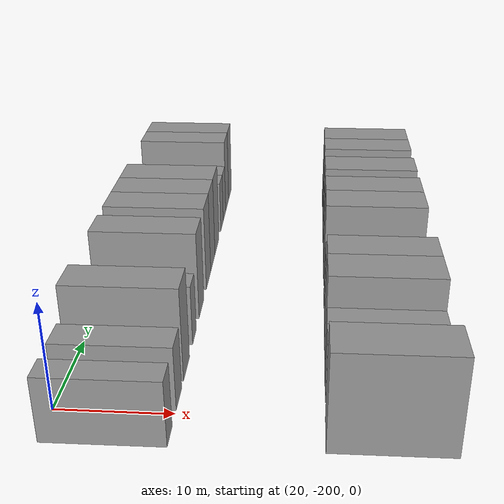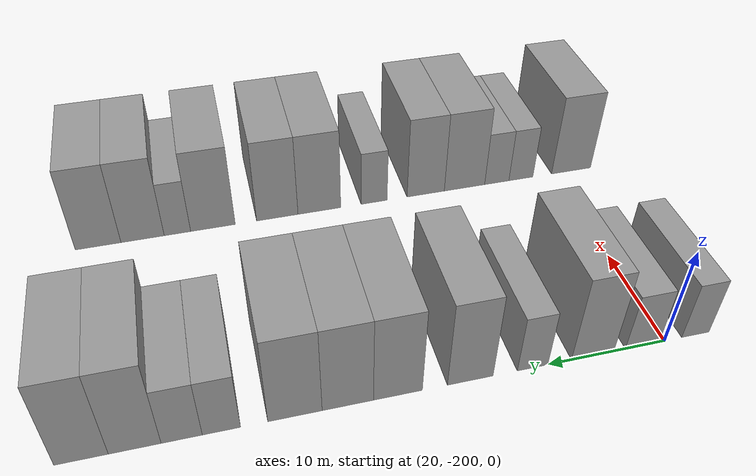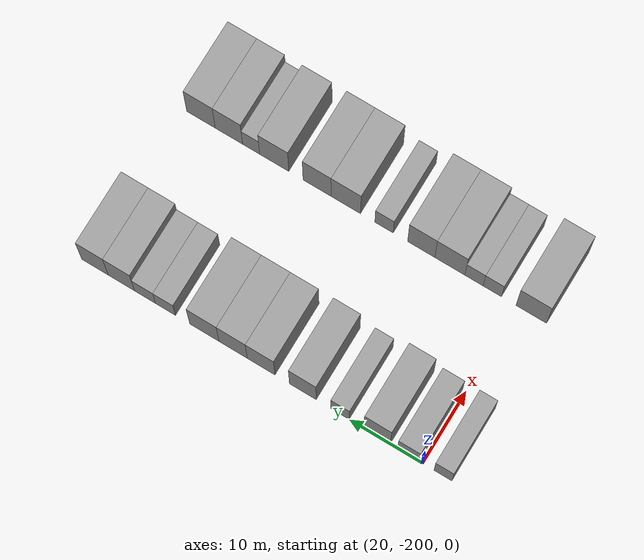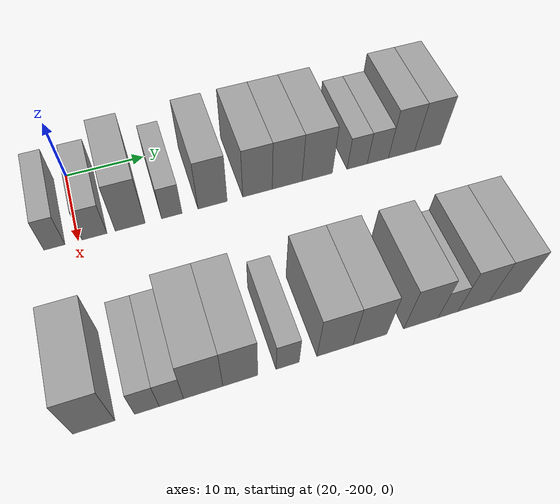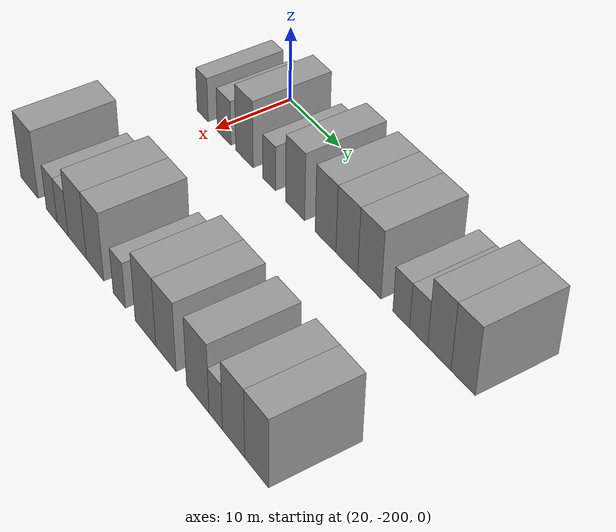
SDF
<sdf version="1.6">
 <world name="default">
  <model name="building_1">
   <static>1</static>
   <pose>25.0000 -202.7742 0 0.000000 0.000000 0.000000</pose>
   <link name="link">
    <pose>0 0 3.00 0 0 0</pose>
    <collision name="collision"><geometry><box><size>10.0000 2.4517 6.0000</size></box></geometry></collision>
    <visual name="visual">
     <cast_shadows>0</cast_shadows>
     <geometry><box><size>10.0000 2.4517 6.0000</size></box></geometry>
     <material>
      <script>
       <uri>model://grey_wall/materials/scripts</uri>
       <uri>model://grey_wall/materials/textures</uri>
       <name>vrc/grey_wall</name>
      </script>
     </material>
    </visual>
   </link>
  </model>
  <model name="building_2">
   <static>1</static>
   <pose>25.0000 -198.0626 0 0.000000 0.000000 0.000000</pose>
   <link name="link">
    <pose>0 0 3.00 0 0 0</pose>
    <collision name="collision"><geometry><box><size>10.0000 2.9713 6.0000</size></box></geometry></collision>
    <visual name="visual">
     <cast_shadows>0</cast_shadows>
     <geometry><box><size>10.0000 2.9713 6.0000</size></box></geometry>
     <material>
      <script>
       <uri>model://grey_wall/materials/scripts</uri>
       <uri>model://grey_wall/materials/textures</uri>
       <name>vrc/grey_wall</name>
      </script>
     </material>
    </visual>
   </link>
  </model>
  <model name="building_3">
   <static>1</static>
   <pose>25.0000 -193.7579 0 0.000000 0.000000 0.000000</pose>
   <link name="link">
    <pose>0 0 4.50 0 0 0</pose>
    <collision name="collision"><geometry><box><size>10.0000 3.6382 9.0000</size></box></geometry></collision>
    <visual name="visual">
     <cast_shadows>0</cast_shadows>
     <geometry><box><size>10.0000 3.6382 9.0000</size></box></geometry>
     <material>
      <script>
       <uri>model://grey_wall/materials/scripts</uri>
       <uri>model://grey_wall/materials/textures</uri>
       <name>vrc/grey_wall</name>
      </script>
     </material>
    </visual>
   </link>
  </model>
  <model name="building_4">
   <static>1</static>
   <pose>25.0000 -188.6675 0 0.000000 0.000000 0.000000</pose>
   <link name="link">
    <pose>0 0 3.00 0 0 0</pose>
    <collision name="collision"><geometry><box><size>10.0000 2.5426 6.0000</size></box></geometry></collision>
    <visual name="visual">
     <cast_shadows>0</cast_shadows>
     <geometry><box><size>10.0000 2.5426 6.0000</size></box></geometry>
     <material>
      <script>
       <uri>model://grey_wall/materials/scripts</uri>
       <uri>model://grey_wall/materials/textures</uri>
       <name>vrc/grey_wall</name>
      </script>
     </material>
    </visual>
   </link>
  </model>
  <model name="building_5">
   <static>1</static>
   <pose>25.0000 -183.5469 0 0.000000 0.000000 0.000000</pose>
   <link name="link">
    <pose>0 0 4.50 0 0 0</pose>
    <collision name="collision"><geometry><box><size>10.0000 3.6987 9.0000</size></box></geometry></collision>
    <visual name="visual">
     <cast_shadows>0</cast_shadows>
     <geometry><box><size>10.0000 3.6987 9.0000</size></box></geometry>
     <material>
      <script>
       <uri>model://grey_wall/materials/scripts</uri>
       <uri>model://grey_wall/materials/textures</uri>
       <name>vrc/grey_wall</name>
      </script>
     </material>
    </visual>
   </link>
  </model>
  <model name="building_6">
   <static>1</static>
   <pose>25.0000 -177.7807 0 0.000000 0.000000 0.000000</pose>
   <link name="link">
    <pose>0 0 4.50 0 0 0</pose>
    <collision name="collision"><geometry><box><size>10.0000 3.8337 9.0000</size></box></geometry></collision>
    <visual name="visual">
     <cast_shadows>0</cast_shadows>
     <geometry><box><size>10.0000 3.8337 9.0000</size></box></geometry>
     <material>
      <script>
       <uri>model://grey_wall/materials/scripts</uri>
       <uri>model://grey_wall/materials/textures</uri>
       <name>vrc/grey_wall</name>
      </script>
     </material>
    </visual>
   </link>
  </model>
  <model name="building_7">
   <static>1</static>
   <pose>25.0000 -173.8962 0 0.000000 0.000000 0.000000</pose>
   <link name="link">
    <pose>0 0 4.50 0 0 0</pose>
    <collision name="collision"><geometry><box><size>10.0000 3.9352 9.0000</size></box></geometry></collision>
    <visual name="visual">
     <cast_shadows>0</cast_shadows>
     <geometry><box><size>10.0000 3.9352 9.0000</size></box></geometry>
     <material>
      <script>
       <uri>model://grey_wall/materials/scripts</uri>
       <uri>model://grey_wall/materials/textures</uri>
       <name>vrc/grey_wall</name>
      </script>
     </material>
    </visual>
   </link>
  </model>
  <model name="building_8">
   <static>1</static>
   <pose>25.0000 -169.8892 0 0.000000 0.000000 0.000000</pose>
   <link name="link">
    <pose>0 0 4.50 0 0 0</pose>
    <collision name="collision"><geometry><box><size>10.0000 4.0788 9.0000</size></box></geometry></collision>
    <visual name="visual">
     <cast_shadows>0</cast_shadows>
     <geometry><box><size>10.0000 4.0788 9.0000</size></box></geometry>
     <material>
      <script>
       <uri>model://grey_wall/materials/scripts</uri>
       <uri>model://grey_wall/materials/textures</uri>
       <name>vrc/grey_wall</name>
      </script>
     </material>
    </visual>
   </link>
  </model>
  <model name="building_9">
   <static>1</static>
   <pose>25.0000 -164.4599 0 0.000000 0.000000 0.000000</pose>
   <link name="link">
    <pose>0 0 3.00 0 0 0</pose>
    <collision name="collision"><geometry><box><size>10.0000 2.7798 6.0000</size></box></geometry></collision>
    <visual name="visual">
     <cast_shadows>0</cast_shadows>
     <geometry><box><size>10.0000 2.7798 6.0000</size></box></geometry>
     <material>
      <script>
       <uri>model://grey_wall/materials/scripts</uri>
       <uri>model://grey_wall/materials/textures</uri>
       <name>vrc/grey_wall</name>
      </script>
     </material>
    </visual>
   </link>
  </model>
  <model name="building_10">
   <static>1</static>
   <pose>25.0000 -161.5999 0 0.000000 0.000000 0.000000</pose>
   <link name="link">
    <pose>0 0 3.00 0 0 0</pose>
    <collision name="collision"><geometry><box><size>10.0000 2.9401 6.0000</size></box></geometry></collision>
    <visual name="visual">
     <cast_shadows>0</cast_shadows>
     <geometry><box><size>10.0000 2.9401 6.0000</size></box></geometry>
     <material>
      <script>
       <uri>model://grey_wall/materials/scripts</uri>
       <uri>model://grey_wall/materials/textures</uri>
       <name>vrc/grey_wall</name>
      </script>
     </material>
    </visual>
   </link>
  </model>
  <model name="building_11">
   <static>1</static>
   <pose>25.0000 -158.2807 0 0.000000 0.000000 0.000000</pose>
   <link name="link">
    <pose>0 0 4.50 0 0 0</pose>
    <collision name="collision"><geometry><box><size>10.0000 3.6983 9.0000</size></box></geometry></collision>
    <visual name="visual">
     <cast_shadows>0</cast_shadows>
     <geometry><box><size>10.0000 3.6983 9.0000</size></box></geometry>
     <material>
      <script>
       <uri>model://grey_wall/materials/scripts</uri>
       <uri>model://grey_wall/materials/textures</uri>
       <name>vrc/grey_wall</name>
      </script>
     </material>
    </visual>
   </link>
  </model>
  <model name="building_12">
   <static>1</static>
   <pose>25.0000 -154.5642 0 0.000000 0.000000 0.000000</pose>
   <link name="link">
    <pose>0 0 4.50 0 0 0</pose>
    <collision name="collision"><geometry><box><size>10.0000 3.7347 9.0000</size></box></geometry></collision>
    <visual name="visual">
     <cast_shadows>0</cast_shadows>
     <geometry><box><size>10.0000 3.7347 9.0000</size></box></geometry>
     <material>
      <script>
       <uri>model://grey_wall/materials/scripts</uri>
       <uri>model://grey_wall/materials/textures</uri>
       <name>vrc/grey_wall</name>
      </script>
     </material>
    </visual>
   </link>
  </model>
  <model name="building_87">
   <static>1</static>
   <pose>47.0000 -201.8964 0 0.000000 0.000000 0.000000</pose>
   <link name="link">
    <pose>0 0 4.50 0 0 0</pose>
    <collision name="collision"><geometry><box><size>10.0000 4.2072 9.0000</size></box></geometry></collision>
    <visual name="visual">
     <cast_shadows>0</cast_shadows>
     <geometry><box><size>10.0000 4.2072 9.0000</size></box></geometry>
     <material>
      <script>
       <uri>model://grey_wall/materials/scripts</uri>
       <uri>model://grey_wall/materials/textures</uri>
       <name>vrc/grey_wall</name>
      </script>
     </material>
    </visual>
   </link>
  </model>
  <model name="building_88">
   <static>1</static>
   <pose>47.0000 -196.5256 0 0.000000 0.000000 0.000000</pose>
   <link name="link">
    <pose>0 0 3.00 0 0 0</pose>
    <collision name="collision"><geometry><box><size>10.0000 2.5345 6.0000</size></box></geometry></collision>
    <visual name="visual">
     <cast_shadows>0</cast_shadows>
     <geometry><box><size>10.0000 2.5345 6.0000</size></box></geometry>
     <material>
      <script>
       <uri>model://grey_wall/materials/scripts</uri>
       <uri>model://grey_wall/materials/textures</uri>
       <name>vrc/grey_wall</name>
      </script>
     </material>
    </visual>
   </link>
  </model>
  <model name="building_89">
   <static>1</static>
   <pose>47.0000 -193.9909 0 0.000000 0.000000 0.000000</pose>
   <link name="link">
    <pose>0 0 3.00 0 0 0</pose>
    <collision name="collision"><geometry><box><size>10.0000 2.5350 6.0000</size></box></geometry></collision>
    <visual name="visual">
     <cast_shadows>0</cast_shadows>
     <geometry><box><size>10.0000 2.5350 6.0000</size></box></geometry>
     <material>
      <script>
       <uri>model://grey_wall/materials/scripts</uri>
       <uri>model://grey_wall/materials/textures</uri>
       <name>vrc/grey_wall</name>
      </script>
     </material>
    </visual>
   </link>
  </model>
  <model name="building_90">
   <static>1</static>
   <pose>47.0000 -190.6429 0 0.000000 0.000000 0.000000</pose>
   <link name="link">
    <pose>0 0 4.50 0 0 0</pose>
    <collision name="collision"><geometry><box><size>10.0000 4.1609 9.0000</size></box></geometry></collision>
    <visual name="visual">
     <cast_shadows>0</cast_shadows>
     <geometry><box><size>10.0000 4.1609 9.0000</size></box></geometry>
     <material>
      <script>
       <uri>model://grey_wall/materials/scripts</uri>
       <uri>model://grey_wall/materials/textures</uri>
       <name>vrc/grey_wall</name>
      </script>
     </material>
    </visual>
   </link>
  </model>
  <model name="building_91">
   <static>1</static>
   <pose>47.0000 -186.6748 0 0.000000 0.000000 0.000000</pose>
   <link name="link">
    <pose>0 0 4.50 0 0 0</pose>
    <collision name="collision"><geometry><box><size>10.0000 3.7754 9.0000</size></box></geometry></collision>
    <visual name="visual">
     <cast_shadows>0</cast_shadows>
     <geometry><box><size>10.0000 3.7754 9.0000</size></box></geometry>
     <material>
      <script>
       <uri>model://grey_wall/materials/scripts</uri>
       <uri>model://grey_wall/materials/textures</uri>
       <name>vrc/grey_wall</name>
      </script>
     </material>
    </visual>
   </link>
  </model>
  <model name="building_92">
   <static>1</static>
   <pose>47.0000 -181.5037 0 0.000000 0.000000 0.000000</pose>
   <link name="link">
    <pose>0 0 3.00 0 0 0</pose>
    <collision name="collision"><geometry><box><size>10.0000 2.5666 6.0000</size></box></geometry></collision>
    <visual name="visual">
     <cast_shadows>0</cast_shadows>
     <geometry><box><size>10.0000 2.5666 6.0000</size></box></geometry>
     <material>
      <script>
       <uri>model://grey_wall/materials/scripts</uri>
       <uri>model://grey_wall/materials/textures</uri>
       <name>vrc/grey_wall</name>
      </script>
     </material>
    </visual>
   </link>
  </model>
  <model name="building_93">
   <static>1</static>
   <pose>47.0000 -176.1572 0 0.000000 0.000000 0.000000</pose>
   <link name="link">
    <pose>0 0 4.50 0 0 0</pose>
    <collision name="collision"><geometry><box><size>10.0000 4.1265 9.0000</size></box></geometry></collision>
    <visual name="visual">
     <cast_shadows>0</cast_shadows>
     <geometry><box><size>10.0000 4.1265 9.0000</size></box></geometry>
     <material>
      <script>
       <uri>model://grey_wall/materials/scripts</uri>
       <uri>model://grey_wall/materials/textures</uri>
       <name>vrc/grey_wall</name>
      </script>
     </material>
    </visual>
   </link>
  </model>
  <model name="building_94">
   <static>1</static>
   <pose>47.0000 -172.1310 0 0.000000 0.000000 0.000000</pose>
   <link name="link">
    <pose>0 0 4.50 0 0 0</pose>
    <collision name="collision"><geometry><box><size>10.0000 3.9259 9.0000</size></box></geometry></collision>
    <visual name="visual">
     <cast_shadows>0</cast_shadows>
     <geometry><box><size>10.0000 3.9259 9.0000</size></box></geometry>
     <material>
      <script>
       <uri>model://grey_wall/materials/scripts</uri>
       <uri>model://grey_wall/materials/textures</uri>
       <name>vrc/grey_wall</name>
      </script>
     </material>
    </visual>
   </link>
  </model>
  <model name="building_95">
   <static>1</static>
   <pose>47.0000 -166.1115 0 0.000000 0.000000 0.000000</pose>
   <link name="link">
    <pose>0 0 4.50 0 0 0</pose>
    <collision name="collision"><geometry><box><size>10.0000 4.1133 9.0000</size></box></geometry></collision>
    <visual name="visual">
     <cast_shadows>0</cast_shadows>
     <geometry><box><size>10.0000 4.1133 9.0000</size></box></geometry>
     <material>
      <script>
       <uri>model://grey_wall/materials/scripts</uri>
       <uri>model://grey_wall/materials/textures</uri>
       <name>vrc/grey_wall</name>
      </script>
     </material>
    </visual>
   </link>
  </model>
  <model name="building_96">
   <static>1</static>
   <pose>47.0000 -162.8544 0 0.000000 0.000000 0.000000</pose>
   <link name="link">
    <pose>0 0 3.00 0 0 0</pose>
    <collision name="collision"><geometry><box><size>10.0000 2.4008 6.0000</size></box></geometry></collision>
    <visual name="visual">
     <cast_shadows>0</cast_shadows>
     <geometry><box><size>10.0000 2.4008 6.0000</size></box></geometry>
     <material>
      <script>
       <uri>model://grey_wall/materials/scripts</uri>
       <uri>model://grey_wall/materials/textures</uri>
       <name>vrc/grey_wall</name>
      </script>
     </material>
    </visual>
   </link>
  </model>
  <model name="building_97">
   <static>1</static>
   <pose>47.0000 -159.7162 0 0.000000 0.000000 0.000000</pose>
   <link name="link">
    <pose>0 0 4.50 0 0 0</pose>
    <collision name="collision"><geometry><box><size>10.0000 3.8755 9.0000</size></box></geometry></collision>
    <visual name="visual">
     <cast_shadows>0</cast_shadows>
     <geometry><box><size>10.0000 3.8755 9.0000</size></box></geometry>
     <material>
      <script>
       <uri>model://grey_wall/materials/scripts</uri>
       <uri>model://grey_wall/materials/textures</uri>
       <name>vrc/grey_wall</name>
      </script>
     </material>
    </visual>
   </link>
  </model>
  <model name="building_98">
   <static>1</static>
   <pose>47.0000 -155.7651 0 0.000000 0.000000 0.000000</pose>
   <link name="link">
    <pose>0 0 4.50 0 0 0</pose>
    <collision name="collision"><geometry><box><size>10.0000 4.0269 9.0000</size></box></geometry></collision>
    <visual name="visual">
     <cast_shadows>0</cast_shadows>
     <geometry><box><size>10.0000 4.0269 9.0000</size></box></geometry>
     <material>
      <script>
       <uri>model://grey_wall/materials/scripts</uri>
       <uri>model://grey_wall/materials/textures</uri>
       <name>vrc/grey_wall</name>
      </script>
     </material>
    </visual>
   </link>
  </model>
 </world>
</sdf>
